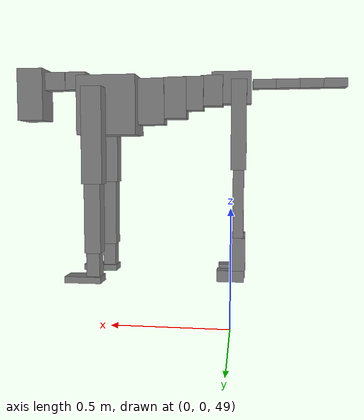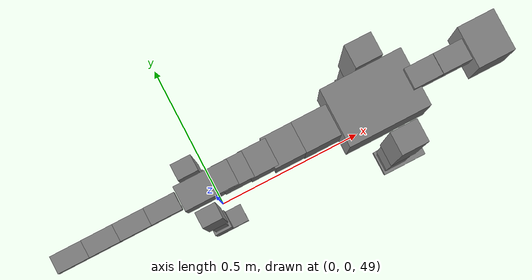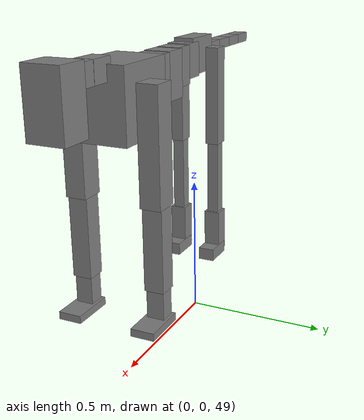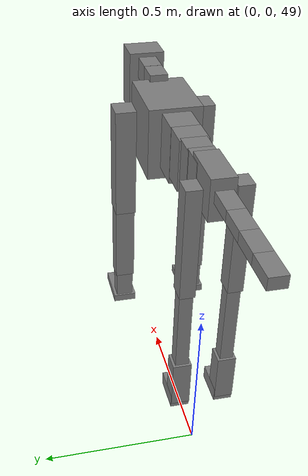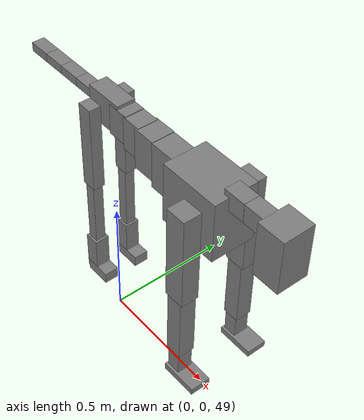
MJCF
<mujoco model="dog">

    <default>
        <joint armature="0.02" stiffness="1" damping="0.2" limited="true"/>
        <geom condim="3" friction="1 0.05 0.05" margin="0.01"/>
        <motor ctrllimited="true" ctrlrange="-1.0 1.0" forcelimited="true" gear="50"/>
    </default>

    <compiler inertiafromgeom="true" angle="radian"/>

    <option timestep="0.016" iterations="50" tolerance="1e-10" solver="Newton" jacobian="dense" cone="pyramidal"/>

    <size nconmax="20000" njmax="60000" nstack="5000000"/>
    <visual>
        <map force="0.1" zfar="30"/>
        <rgba haze="0.15 0.25 0.35 1"/>
        <quality shadowsize="2048"/>
        <global offwidth="800" offheight="800"/>
    </visual>

    <asset>
        <texture type="skybox" builtin="gradient" rgb1="0.3 0.5 0.7" rgb2="0 0 0" width="512" height="512"/>
        <texture name="texplane" type="2d" builtin="checker" rgb1=".2 .3 .4" rgb2=".1 0.15 0.2" width="512" height="512"
                 mark="cross" markrgb=".8 .8 .8"/>
        <texture name="texgeom" type="cube" builtin="flat" mark="cross" width="127" height="1278" rgb1="0.8 0.6 0.4"
                 rgb2="0.8 0.6 0.4" markrgb="1 1 1" random="0.01"/>

        <material name="matplane" reflectance="0.3" texture="texplane" texrepeat="1 1" texuniform="true"/>
        <material name="matgeom" texture="texgeom" texuniform="true" rgba="0.8 0.6 .4 1"/>
    </asset>

    <worldbody>
        <geom name="floor" pos="0 0 0" size="0 0 .25" type="plane" material="matplane" condim="3"/>

        <light directional="false" diffuse=".2 .2 .2" specular="0 0 0" pos="0 0 5" dir="0 0 -1" castshadow="false"/>
        <light mode="targetbodycom" target="torso" directional="false" diffuse=".8 .8 .8" specular="0.3 0.3 0.3"
               pos="0 0 4.0" dir="0 0 -1"/>

        <body name="root" pos="0 0 50">
            <freejoint name="root_1"/>
            <geom type="box" pos="0 0 -0.02" size="0.0774  0.0358  0.063" density="2030"/>

            <body name="spine1" pos="0.054 0 0">
                <joint name="spine1_y" axis="0 1 0" range="0 0.7" limited="true"/>
                <geom type="box" pos="0.02375 0 -0.03" size="0.04375  0.0375  0.05985" density="2030"/>

                <body name="spine2" pos="0.0612 0 0">
                    <joint name="spine2_y" axis="0 1 0" range="-0.15 0.15" limited="true"/>
                    <geom type="box" pos="0.03555  0  -0.04" size="0.04055  0.039  0.06615" density="2030"/>

                    <body name="spine3" pos="0.0730 0 0">
                        <joint name="spine3_y" axis="0 1 0" range="-0.15 0.15" limited="true"/>
                        <geom type="box" pos="0.03555  0  -0.057" size="0.04555  0.0445  0.081" density="2030"/>

                        <body name="spine4" pos="0.0780 0 0">
                            <joint name="spine4_y" axis="0 1 0" range="-0.15 0.15" limited="true"/>
                            <geom type="box" pos="0.05265  0  -0.07" size="0.05265  0.045  0.09135" density="2030"/>

                            <body name="torso" pos="0.1082 0 0">
                                <joint name="torso_y" axis="0 1 0" range="-0.15 0.15" limited="true"/>
                                <geom type="box" pos="0.11925  0  -0.085" size="0.11925  0.085  0.11745"
                                      density="2030"/>

                                <body name="neck1" pos="0.2160  0   0.0180">
                                    <joint name="neck1_y" axis="0 1 0" range="-1.2  -1" limited="true"/>
                                    <geom type="box" pos="0.0423  0  0" size="0.0423  0.03  0.036" density="2325"/>

                                    <body name="neck2" pos="0.0853  0  0">
                                        <joint name="neck2_y" axis="0 1 0" range="0.1  0" limited="true"/>
                                        <geom type="box" pos="0.0423  0  0" size="0.0423  0.03  0.036" density="2325"/>

                                        <body name="head" pos="0.0853  0  0">
                                            <joint name="head_y" axis="0 1 0" range="-0.3  -0.2" limited="true"/>
                                            <geom type="box" pos="0.0531  0  -0.055" size="0.0531  0.06  0.1044"
                                                  density="4030"/>

                                        </body>
                                    </body>
                                </body>

                                <body name="front_shoulder" pos="0.156  0   -0.0480">
                                    <joint name="front_shoulder_y" axis="0 1 0" range="-1 1.5" limited="true"/>
                                    <geom type="box" pos="0 0.13 -0.1605" size="0.0403  0.0344  0.1871" density="1158"/>
                                    <geom type="box" pos="0 -0.13 -0.1605" size="0.0403  0.0344  0.1871"
                                          density="1158"/>

                                    <body name="front_elbow" pos="0  0  -0.3209">
                                        <joint name="front_elbow_y" axis="0 1 0" range="-2 0" limited="true"/>
                                        <geom type="box" pos="0 0.13 -0.1484" size="0.0318  0.0325  0.1484"
                                              density="1081"/>
                                        <geom type="box" pos="0 -0.13 -0.1484" size="0.0318  0.0325  0.1484"
                                              density="1081"/>

                                        <body name="front_wrist" pos="0  0  -0.2968">
                                            <joint name="front_wrist_y" axis="0 1 0" range="-0.2 0" limited="true"/>
                                            <geom type="box" pos="0 0.13 -0.0537" size="0.0261  0.0290  0.0669"
                                                  density="1664"/>
                                            <geom type="box" pos="0 -0.13 -0.0537" size="0.0261  0.0290  0.0669"
                                                  density="1664"/>

                                            <body name="front_finger_end" pos="0  0  -0.1075">
                                                <joint name="front_finger_y" axis="0 1 0" range="-0.4 1"
                                                       limited="true"/>
                                                <geom type="box" pos="0.0394  0.13  0.0022"
                                                      size="0.0723  0.0394  0.0128" density="1515"/>
                                                <geom type="box" pos="0.0394  -0.13  0.0022"
                                                      size="0.0723  0.0394  0.0128" density="1515"/>

                                            </body>

                                        </body>
                                    </body>
                                </body>

                            </body>
                        </body>
                    </body>
                </body>
            </body>

            <body name="back_hip" pos="-0.03 0 -0.018">
                <joint name="back_hip_y" axis="0 1 0" range="-1.5 0.3" limited="true"/>
                <geom type="box" pos="0 0.07 -0.1508" size="0.0296  0.0232  0.1736" density="1154"/>
                <geom type="box" pos="0 -0.07 -0.1508" size="0.0296  0.0232  0.1736" density="1154"/>

                <body name="back_knee" pos="0  0  -0.3016">
                    <joint name="back_knee_y" axis="0 1 0" range="0 2.8" limited="true"/>
                    <geom type="box" pos="0 0.07 -0.1483" size="0.0207  0.0204  0.1638" density="1227"/>
                    <geom type="box" pos="0 -0.07 -0.1483" size="0.0207  0.0204  0.1638" density="1227"/>

                    <body name="back_ankle" pos="0  0  -0.2966">
                        <joint name="back_ankle_y" axis="0 1 0" range="-2.2 0" limited="true"/>
                        <geom type="box" pos="0 0.07 -0.0664" size="0.0285  0.0285  0.0776" density="1284"/>
                        <geom type="box" pos="0 -0.07 -0.0664" size="0.0285  0.0285  0.0776" density="1284"/>

                        <body name="back_toe_end" pos="0  0  -0.1327">
                            <joint name="back_toe_y" axis="0 1 0" range="-0.4 1" limited="true"/>
                            <geom type="box" pos="0.0287  0.07  -0.0072" size="0.0526  0.0287  0.0222" density="1515"/>
                            <geom type="box" pos="0.0287  -0.07  -0.0072" size="0.0526  0.0287  0.0222" density="1515"/>

                        </body>
                    </body>
                </body>
            </body>

            <body name="tail1" pos="-0.074 0 -0.006">
                <joint name="tail1_y" axis="0 1 0" range="-0.2 0.2" limited="true"/>
                <geom type="box" pos="-0.0536  0  0" size="0.045  0.025  0.0175" density="1587"/>

                <body name="tail2" pos="-0.09 0 0">
                    <joint name="tail2_y" axis="0 1 0" range="-0.2 0.2" limited="true"/>
                    <geom type="box" pos="-0.0536  0  0" size="0.045  0.025  0.0175" density="1587"/>

                    <body name="tail3" pos="-0.09 0 0">
                        <joint name="tail3_y" axis="0 1 0" range="-0.2 0.2" limited="true"/>
                        <geom type="box" pos="-0.0536  0  0" size="0.045  0.025  0.0175" density="1587"/>

                        <body name="tail4" pos="-0.09 0 0">
                            <joint name="tail4_y" axis="0 1 0" range="-0.2 0.2" limited="true"/>
                            <geom type="box" pos="-0.0536  0  0" size="0.045  0.025  0.0175" density="1587"/>

                        </body>
                    </body>
                </body>
            </body>
        </body>
    </worldbody>

    <actuator>
        <motor joint="spine1_y" forcerange="-150 150     "/>
        <motor joint="spine2_y" forcerange="-150 150     "/>
        <motor joint="spine3_y" forcerange="-150 150     "/>
        <motor joint="spine4_y" forcerange="-150 150     "/>
        <motor joint="torso_y" forcerange="-150 150     "/>
        <motor joint="neck1_y" forcerange="-100 100       "/>
        <motor joint="neck2_y" forcerange="-100 100       "/>
        <motor joint="head_y" forcerange="-150 150       "/>
        <motor joint="front_shoulder_y" forcerange="-175.50 153.94"/>
        <motor joint="front_elbow_y" forcerange="-161.54 175.18"/>
        <motor joint="front_wrist_y" forcerange="-86.12 145.75"/>
        <motor joint="front_finger_y" forcerange="-72.57 97.69"/>
        <motor joint="back_hip_y" forcerange="-299.45 209.90"/>
        <motor joint="back_knee_y" forcerange="-272.03 224.71"/>
        <motor joint="back_angle_y" forcerange="-162.48 193.08"/>
        <motor joint="back_toe_y" forcerange="-79.59 69.81"/>
        <motor joint="tail1_y" forcerange="-50 50     "/>
        <motor joint="tail2_y" forcerange="-50 50     "/>
        <motor joint="tail3_y" forcerange="-50 50     "/>
        <motor joint="tail4_y" forcerange="-50 50     "/>
    </actuator>
</mujoco>
